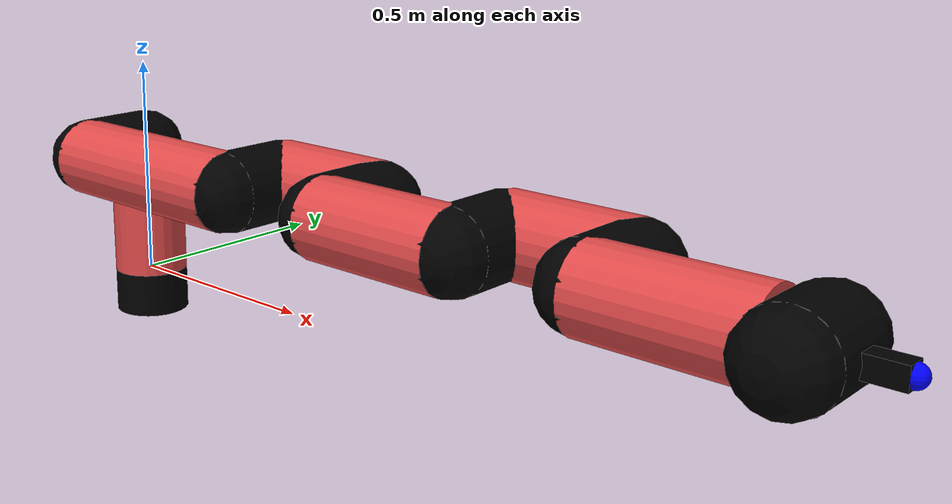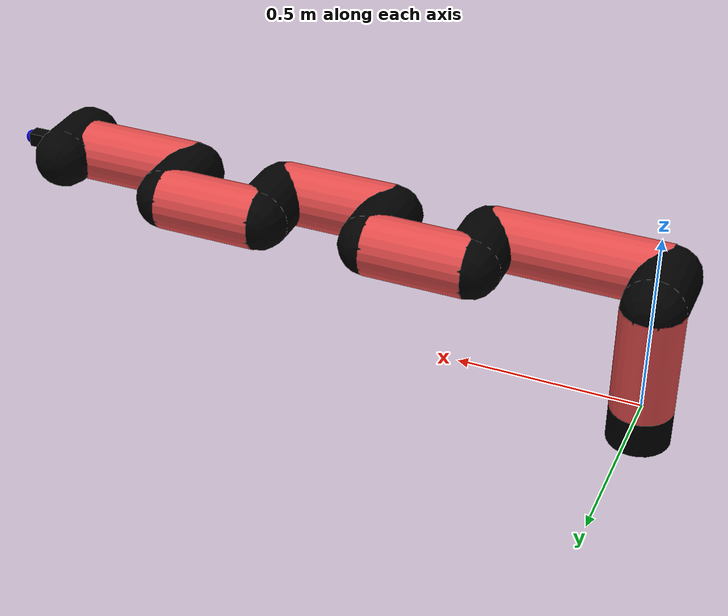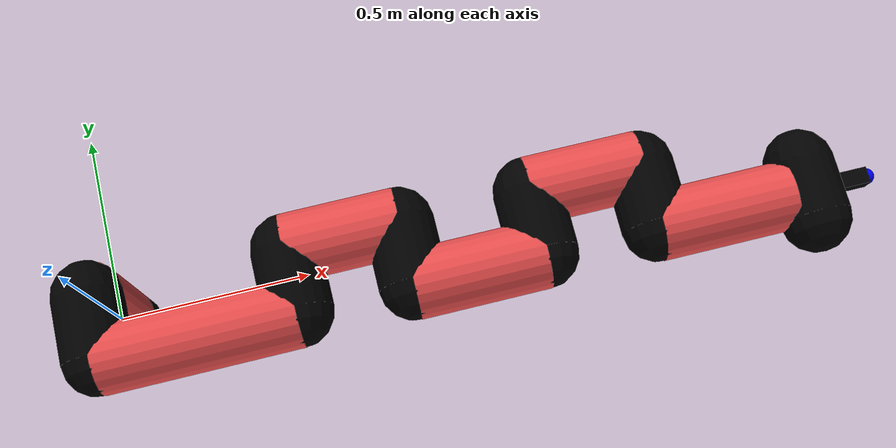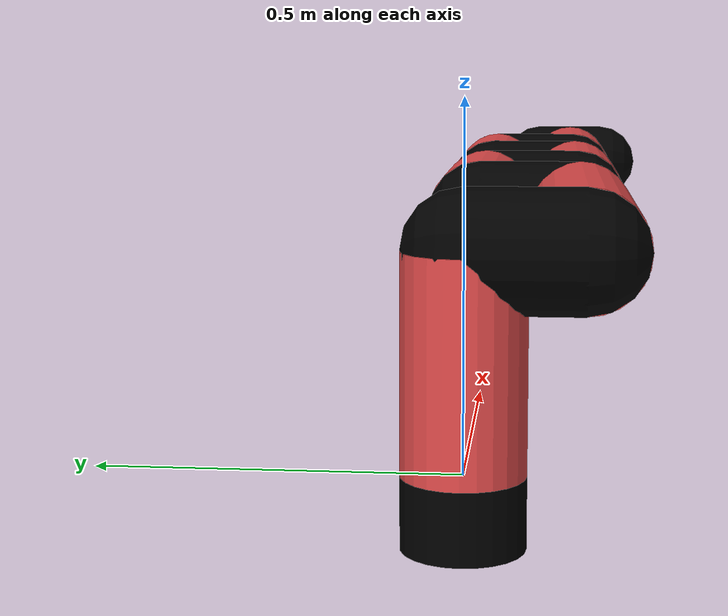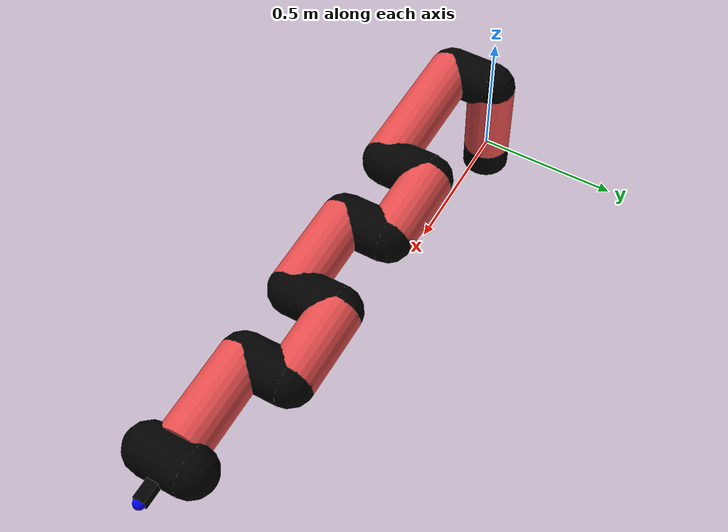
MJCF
<mujoco model="manipulator">
		<compiler angle="degree" coordinate="local" inertiafromgeom="auto" meshdir="meshes/"/>
		<option gravity="0 0 0" integrator="RK4" iterations="30" timestep="0.01"/>

		<default>
		<joint armature="1" limited="true" stiffness="10" damping="15" frictionloss="5.0"/>
		<geom conaffinity="1" condim="3" contype="1" friction=".5 .1 .1" margin="0.002"/>
		<motor ctrllimited="true"/>
		<position ctrllimited="true"/>
		</default>

		<asset>
		<texture builtin="gradient" height="100" rgb1="1.0 1.0 1.0" rgb2="1.0 1.0 1.0" type="skybox" width="100"/>
		<texture builtin="flat" height="32" name="arm_tex" rgb1="0.9 0.3 0.3" type="2d" width="32"/>
		<texture builtin="flat" height="32" name="gripper_tex" rgb1="0.0 0.0 0.0" type="cube" width="32"/>

		<material name="arm_mat" shininess="0.1" specular="0.1" texture="arm_tex"/>
		<material name="gripper_mat" shininess="1" specular="1" texture="gripper_tex"/>
		</asset>

		<worldbody>
		<light cutoff="45" diffuse=".8 .8 .8" dir="0 0.16 -1" directional="false" name="light" pos="0 -2.0 8.0" specular="0.3 0.3 0.3"/>

		<body name="base_link" pos="0 0 -0.1">
		<geom fromto="0 0 0 0 0 0.1" material="arm_mat" name="base_link" rgba="0.0 0.0 0.0 1" size="0.085" type="cylinder"/>
		</body>

		<body name="l1" pos="0 0 0">
<geom fromto="0 0 0 0 0 0.3" material="arm_mat" name="l1" rgba="0.9 0.3 0.3 1" size="0.085" type="cylinder"/>
<geom fromto="0 0 0.3 0 -0.16 0.3" material="arm_mat" name="l1_ex" rgba="0.0 0.0 0.0 1" size="0.085" type="capsule"/>
<joint axis="0 0 1" name="j1" pos="0 0 0" range="-90 90" damping="29.2" frictionloss="9.5"/>

<body name="l2" pos="0 -0.16 0.3">
<geom fromto="0 0 0 0.48 0 0" material="arm_mat" name="l2" rgba="0.9 0.3 0.3 1" size="0.085" type="cylinder"/>
<geom fromto="0.48 0 0 0.48 0.16 0" material="arm_mat" name="l2_ex" rgba="0.0 0.0 0.0 1" size="0.085" type="capsule"/>
<joint axis="0.0 1.0 0.0" name="j2" pos="0 0 0" range="-90 60" damping="35.49" frictionloss="9.09"/>

<body name="l3" pos="0.48 0.16 0">
<geom fromto="0 0 0 0.28 0 0" material="arm_mat" name="l3" rgba="0.9 0.3 0.3 1" size="0.085" type="cylinder"/>
<geom fromto="0.28 0 0 0.28 -0.16 0" material="arm_mat" name="l3_ex" rgba="0.0 0.0 0.0 1" size="0.085" type="capsule"/>
<joint axis="0.0 1.0 0.0" name="j3" pos="0 0 0" range="-30 60" damping="28.5" frictionloss="10.05"/>

<body name="l4" pos="0.28 -0.16 0">
<geom fromto="0 0 0 0.32 0 0" material="arm_mat" name="l4" rgba="0.9 0.3 0.3 1" size="0.085" type="cylinder"/>
<geom fromto="0.32 0 0 0.32 0.16 0" material="arm_mat" name="l4_ex" rgba="0.0 0.0 0.0 1" size="0.085" type="capsule"/>
<joint axis="0.0 1.0 0.0" name="j4" pos="0 0 0" range="-30 60" damping="37.01" frictionloss="8.06"/>

<body name="l5" pos="0.32 0.16 0">
<geom fromto="0 0 0 0.28 0 0" material="arm_mat" name="l5" rgba="0.9 0.3 0.3 1" size="0.085" type="cylinder"/>
<geom fromto="0.28 0 0 0.28 -0.16 0" material="arm_mat" name="l5_ex" rgba="0.0 0.0 0.0 1" size="0.085" type="capsule"/>
<joint axis="0.0 1.0 0.0" name="j5" pos="0 0 0" range="-30 60" damping="24.18" frictionloss="11.36"/>

<body name="l6" pos="0.28 -0.16 0">
<geom fromto="0 0 0 0.33 0 0" material="arm_mat" name="l6" rgba="0.9 0.3 0.3 1" size="0.085" type="cylinder"/>
<joint axis="0.0 1.0 0.0" name="j6" pos="0 0 0" range="-30 60" damping="34.51" frictionloss="11.72"/>

<body name="gripper" pos="0.33 0 0">
<geom fromto="0.05 -0.07 0 0.05 0.07 0" material="gripper_mat" name="gripper" rgba="0.0 0.0 0.0 1" size="0.085" type="capsule"/><joint axis="1 0 0" name="j7" pos="0 0 0" range="-90 90" damping="15" frictionloss="5.0"/><body name="finger" pos="0.1 0 0">
<geom fromto="0 0.0 0 0.1 0.0 0" material="gripper_mat" name="finger" rgba="0.0 0.0 0.0 1" size="0.020 0.06 0.06" type="box"/>
</body>
<site name="current" pos="0.2 0. 0.0" rgba="0. 0. 1.0 1" size="0.02" type="sphere"/>
</body>
</body>
</body>
</body>
</body>
</body>
</body>
</worldbody>
<actuator>
<motor ctrllimited="true" ctrlrange="-1.0 1.0" joint="j1" gear="99.35"/>
<motor ctrllimited="true" ctrlrange="-1.0 1.0" joint="j2" gear="68.27"/>
<motor ctrllimited="true" ctrlrange="-1.0 1.0" joint="j3" gear="63.61"/>
<motor ctrllimited="true" ctrlrange="-1.0 1.0" joint="j4" gear="92.49"/>
<motor ctrllimited="true" ctrlrange="-1.0 1.0" joint="j5" gear="98.74"/>
<motor ctrllimited="true" ctrlrange="-1.0 1.0" joint="j6" gear="92.8"/>
<motor ctrllimited="true" ctrlrange="-1.0 1.0" joint="j7" gear="80"/>
</actuator>
</mujoco>
